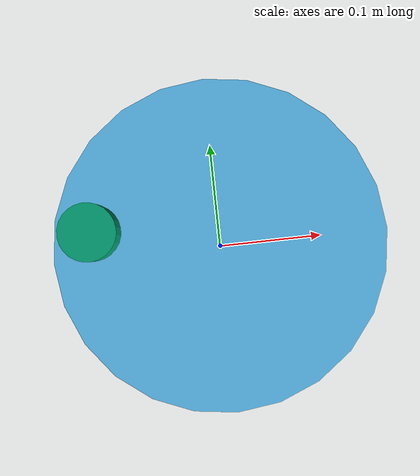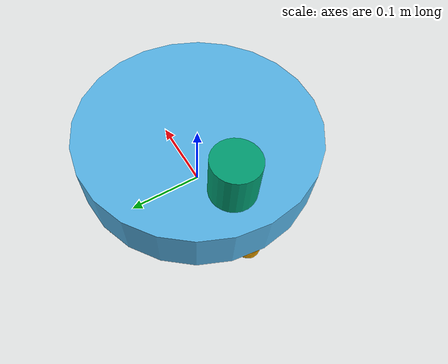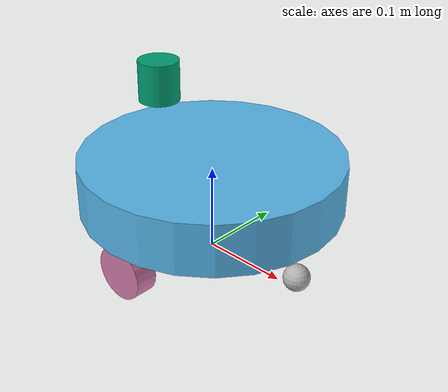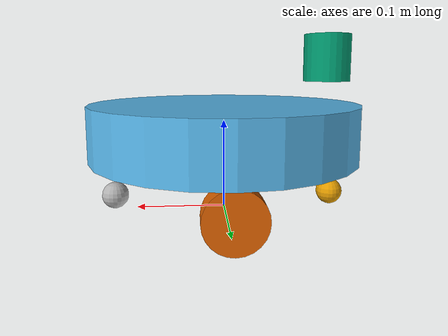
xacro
<?xml version="1.0"?>
<robot xmlns:xacro="http://www.ros.org/wiki/xacro" name="my_diffbot_robot">
  <!-- Arguments -->
  <xacro:arg name="prefix" default="" />
  <xacro:arg name="sim_gazebo" default="false" />
  <xacro:arg name="use_mock_hardware" default="false" />
  <xacro:arg name="serial_port" default="/dev/ttyACM0" />
  <xacro:arg name="baud_rate" default="115200" />
  <xacro:arg name="encoder_counts_per_revolution" default="515" />
  <xacro:arg name="timeout_ms" default="20" />

  <!-- Import my_diffbot description -->
  <xacro:include filename="$(find my_diffbot_description)/urdf/my_diffbot_description.xacro" />
  <xacro:diffbot prefix="$(arg prefix)" />

  <!-- Import Gz sim materials and plugins -->
  <xacro:if value="$(arg sim_gazebo)">
    <xacro:include filename="$(find my_diffbot_description)/urdf/my_diffbot_gz_sim.xacro" />
  </xacro:if>

  <!-- Import my_diffbot ros2_control if (sim_gazebo == false) -->
  <xacro:unless value="$(arg sim_gazebo)">
    <xacro:include filename="$(find my_diffbot_description)/urdf/my_diffbot_ros2_control.xacro" />
    <xacro:my_diffbot_ros2_control
    name="My_diffbot"
    mock_hardware="$(arg use_mock_hardware)"
    serial_port="$(arg serial_port)" baud_rate="$(arg baud_rate)"
    encoder_counts_per_revolution="$(arg encoder_counts_per_revolution)"
    timeout_ms="$(arg timeout_ms)"/>
  </xacro:unless>

</robot>

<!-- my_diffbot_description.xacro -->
<robot xmlns:xacro="http://www.ros.org/wiki/xacro">

  <xacro:macro name="diffbot" params="prefix">

  <!-- Constants for robot dimensions -->
  <xacro:property name="PI" value="3.1415926535897931"/>
  <xacro:property name="base_mass" value="0.3" /> <!-- arbitrary value for base mass -->
  <xacro:property name="base_width" value="0.28" />
  <xacro:property name="base_length" value="0.3" />
  <xacro:property name="base_height" value="0.06" />
  <xacro:property name="wheel_mass" value="0.3" /> <!-- arbitrary value for wheel mass -->
  <xacro:property name="wheel_len" value="0.025" />
  <xacro:property name="wheel_radius" value="0.03" />
  <xacro:property name="wheel_separation" value="0.255" />  <!-- wheel centre to centre -->
  <xacro:property name="caster_wheel_mass" value="0.1" /> <!-- arbitrary value for caster wheel mass -->
  <xacro:property name="caster_wheel_radius" value="0.015" />
  <xacro:property name="chassis_z" value="0.03" /> <!-- chassis bottom above the axle -->

  <!-- Base Link: base_link is the axle centre, midway between the wheels -->
  <link name="base_footprint"/>

  <joint name="footprint_joint" type="fixed">
    <parent link="base_footprint"/>
    <child link="${prefix}base_link"/>
    <origin xyz="0.0 0.0 ${wheel_radius}" rpy="0.0 0.0 0.0"/>
  </joint>

  <link name="${prefix}base_link">
    <collision>
      <origin xyz="0 0 ${chassis_z + base_height/2}" rpy="0 0 0"/>
      <geometry>
        <cylinder radius="0.15" length="0.06"/>
      </geometry>
    </collision>

    <visual>
      <origin xyz="0 0 ${chassis_z + base_height/2}" rpy="0 0 0"/>
      <geometry>
        <cylinder radius="0.15" length="0.06"/>
      </geometry>
    </visual>

    <inertial>
      <origin xyz="0 0 ${chassis_z + base_height/2}" rpy="0 0 0"/>
      <mass value="${base_mass}"/>
      <inertia
        ixx="${base_mass / 12.0 * (base_length*base_length + base_height*base_height)}" ixy="0.0" ixz="0.0"
        iyy="${base_mass / 12.0 * (base_height*base_height + base_width*base_width)}" iyz="0.0"
        izz="${base_mass / 12.0 * (base_width*base_width + base_length*base_length)}"/>
      </inertial>
    </link>

    <joint name="lidar_joint" type="fixed">
      <parent link="${prefix}base_link"/>
      <child link="${prefix}lidar_link"/>
      <origin xyz="-0.110 0.023 0.14" rpy="0.0 0.0 ${-1.510 + PI}"/>
    </joint>

    <link name="${prefix}lidar_link">
      <visual>
        <origin xyz="0 0 0" rpy="0 0 0"/>
        <geometry>
          <cylinder length="0.05" radius="0.025"/>
        </geometry>
      </visual>
    </link>

    <!-- Ultrasonic -->
    <joint name="ultrasonic_joint" type="fixed">
      <parent link="${prefix}base_link"/>
      <child link="${prefix}ultrasonic_link"/>
      <origin xyz="0.12 0.0 ${chassis_z}" rpy="0.0 0.0 0.0"/>
    </joint>

    <link name="${prefix}ultrasonic_link">
      <visual>
        <origin xyz="0 0 0" rpy="0 0 0"/>
        <geometry>
          <cylinder length="0.01" radius="0.015"/>
        </geometry>
      </visual>
    </link>

    <joint name="imu_joint" type="fixed">
      <parent link="${prefix}base_link"/>
      <child link="${prefix}imu_link"/>
      <origin xyz="-0.04 0.0 0.045" rpy="0.0 -0.103 0.0"/>
    </joint>

    <link name="${prefix}imu_link">
      <visual>
        <origin xyz="0 0 0" rpy="0 0 0"/>
        <geometry>
          <cylinder length="0.01" radius="0.015"/>
        </geometry>
      </visual>
    </link>

    <!-- Wheels -->
    <joint name="${prefix}left_wheel_joint" type="continuous">
      <parent link="${prefix}base_link"/>
      <child link="${prefix}left_wheel"/>
      <origin xyz="0 ${wheel_separation/2} 0" rpy="0 0 0"/>
      <axis xyz="0 1 0"/>
      <dynamics damping="0.2"/>
      <limit effort="100" velocity="40.0"/>
    </joint>

    <!-- left wheel Link -->
    <link name="${prefix}left_wheel">
      <collision>
        <origin xyz="0 0 0" rpy="${PI/2} 0 0"/>
        <geometry>
          <cylinder length="${wheel_len}" radius="${wheel_radius}"/>
        </geometry>
      </collision>

      <visual>
        <origin xyz="0 0 0" rpy="${PI/2} 0 0"/>
        <geometry>
          <cylinder length="${wheel_len}" radius="${wheel_radius}"/>
        </geometry>
      </visual>

      <inertial>
        <origin xyz="0 0 0" rpy="${PI/2} 0 0"/>
        <mass value="${wheel_mass}"/>
        <inertia
          ixx="${wheel_mass / 12.0 * (3*wheel_radius*wheel_radius + wheel_len*wheel_len)}" ixy="0.0" ixz="0.0"
          iyy="${wheel_mass / 12.0 * (3*wheel_radius*wheel_radius + wheel_len*wheel_len)}" iyz="0.0"
          izz="${wheel_mass / 2.0 * wheel_radius*wheel_radius}"/>
        </inertial>
      </link>

    <joint name="${prefix}right_wheel_joint" type="continuous">
      <parent link="${prefix}base_link"/>
      <child link="${prefix}right_wheel"/>
      <origin xyz="0 -${wheel_separation/2} 0" rpy="0 0 0"/>
      <axis xyz="0 1 0"/>
      <dynamics damping="0.2"/>
      <limit effort="100" velocity="40.0"/>
    </joint>

    <!-- right wheel Link -->
    <link name="${prefix}right_wheel">
      <collision>
        <origin xyz="0 0 0" rpy="${PI/2} 0 0"/>
        <geometry>
          <cylinder length="${wheel_len}" radius="${wheel_radius}"/>
        </geometry>
      </collision>

      <visual>
        <origin xyz="0 0 0" rpy="${PI/2} 0 0"/>
        <geometry>
          <cylinder length="${wheel_len}" radius="${wheel_radius}"/>
        </geometry>
      </visual>

      <inertial>
        <origin xyz="0 0 0" rpy="${PI/2} 0 0"/>
        <mass value="${wheel_mass}"/>
        <inertia
          ixx="${wheel_mass / 12.0 * (3*wheel_radius*wheel_radius + wheel_len*wheel_len)}" ixy="0.0" ixz="0.0"
          iyy="${wheel_mass / 12.0 * (3*wheel_radius*wheel_radius + wheel_len*wheel_len)}" iyz="0.0"
          izz="${wheel_mass / 2.0 * wheel_radius*wheel_radius}"/>
        </inertial>
      </link>

    <joint name="${prefix}caster_frontal_wheel_joint" type="fixed">
      <parent link="${prefix}base_link"/>
      <child link="${prefix}caster_frontal_wheel"/>
      <origin xyz="${base_width/2 - caster_wheel_radius} 0 ${caster_wheel_radius - wheel_radius}" rpy="0 0 0"/>
    </joint>

    <!-- caster frontal wheel Link -->
    <link name="${prefix}caster_frontal_wheel">
      <collision>
        <origin xyz="0 0 0" rpy="0 0 0"/>
        <geometry>
          <sphere radius="${caster_wheel_radius}"/>
        </geometry>
      </collision>

      <visual>
        <origin xyz="0 0 0" rpy="0 0 0"/>
        <geometry>
          <sphere radius="${caster_wheel_radius}"/>
        </geometry>
      </visual>

      <inertial>
        <origin xyz="0 0 0" rpy="0 0 0"/>
        <mass value="${caster_wheel_mass}"/>
        <inertia
          ixx="${caster_wheel_mass * 0.4 * (caster_wheel_radius * caster_wheel_radius)}" ixy="0.0" ixz="0.0"
          iyy="${caster_wheel_mass * 0.4 * (caster_wheel_radius * caster_wheel_radius)}" iyz="0.0"
          izz="${caster_wheel_mass * 0.4 * (caster_wheel_radius * caster_wheel_radius)}"/>
        </inertial>
      </link>

    <joint name="${prefix}caster_rear_wheel_joint" type="fixed">
      <parent link="${prefix}base_link"/>
      <child link="${prefix}caster_rear_wheel"/>
      <origin xyz="${-base_width/2 + caster_wheel_radius} 0 ${caster_wheel_radius - wheel_radius}" rpy="0 0 0"/>
    </joint>

    <!-- caster rear wheel Link -->
    <link name="${prefix}caster_rear_wheel">
      <collision>
        <origin xyz="0 0 0" rpy="0 0 0"/>
        <geometry>
          <sphere radius="${caster_wheel_radius}"/>
        </geometry>
      </collision>

      <visual>
        <origin xyz="0 0 0" rpy="0 0 0"/>
        <geometry>
          <sphere radius="${caster_wheel_radius}"/>
        </geometry>
      </visual>

      <inertial>
        <origin xyz="0 0 0" rpy="0 0 0"/>
        <mass value="${caster_wheel_mass}"/>
        <inertia
          ixx="${caster_wheel_mass * 0.4 * (caster_wheel_radius * caster_wheel_radius)}" ixy="0.0" ixz="0.0"
          iyy="${caster_wheel_mass * 0.4 * (caster_wheel_radius * caster_wheel_radius)}" iyz="0.0"
          izz="${caster_wheel_mass * 0.4 * (caster_wheel_radius * caster_wheel_radius)}"/>
        </inertial>
      </link>

  </xacro:macro>

</robot>
